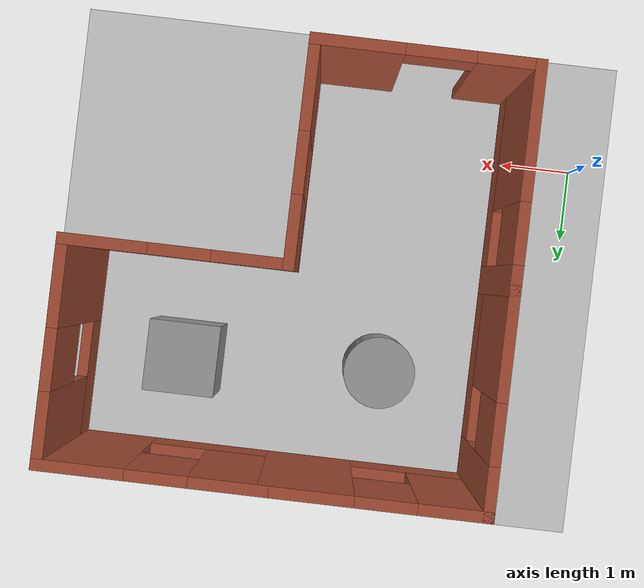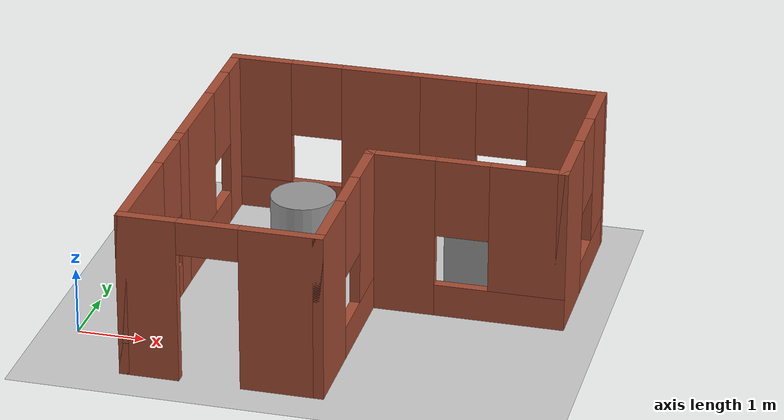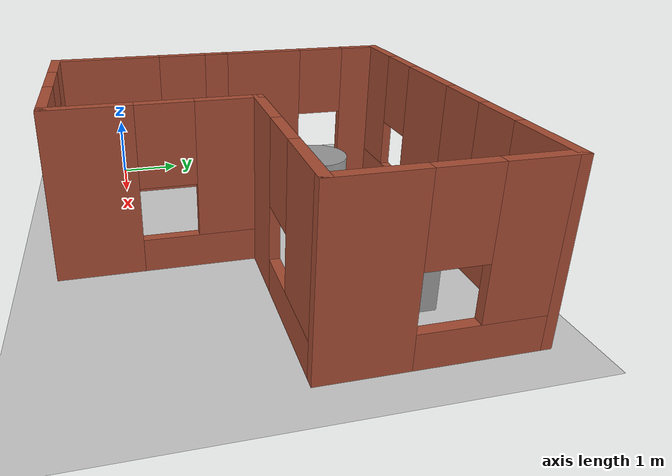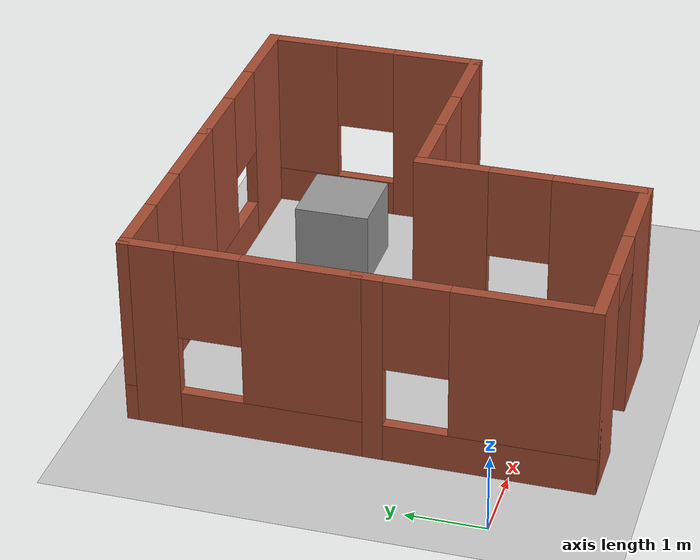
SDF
<sdf version="1.6">
 <world name="default">
  <light name="sun" type="directional">
   <pose>0 0 10 0 -0 0</pose>
   <diffuse>0.8 0.8 0.8 1</diffuse>
   <specular>0.2 0.2 0.2 1</specular>
   <attenuation>
    <range>1000</range>
    <constant>0.9</constant>
    <linear>0.01</linear>
    <quadratic>0.001</quadratic>
   </attenuation>
   <direction>-0.5 0.1 -0.9</direction>
  </light>
  <model name="ground_plane">
   <static>1</static>
   <link name="link">
    <collision name="collision">
     <geometry><plane><normal>0 0 1</normal><size>100 100</size></plane></geometry>
     <surface>
      <contact><collide_bitmask>65535</collide_bitmask></contact>
      <friction><ode><mu>100</mu><mu2>50</mu2></ode></friction>
     </surface>
    </collision>
    <visual name="visual">
     <cast_shadows>0</cast_shadows>
     <geometry><plane><normal>0 0 1</normal><size>100 100</size></plane></geometry>
     <material>
      <script><uri>file://media/materials/scripts/gazebo.material</uri><name>Gazebo/Grey</name></script>
     </material>
    </visual>
   </link>
  </model>
  <gravity>0 0 -9.8</gravity>
  <magnetic_field>6e-06 2.3e-05 -4.2e-05</magnetic_field>
  <atmosphere type="adiabatic"/>
  <physics name="default_physics" default="0" type="ode">
   <max_step_size>0.001</max_step_size>
   <real_time_factor>1</real_time_factor>
   <real_time_update_rate>1000</real_time_update_rate>
  </physics>
  <scene><ambient>0.4 0.4 0.4 1</ambient><background>0.7 0.7 0.7 1</background><shadows>1</shadows></scene>
  <audio><device>default</device></audio>
  <spherical_coordinates>
   <surface_model>EARTH_WGS84</surface_model>
   <latitude_deg>0</latitude_deg>
   <longitude_deg>0</longitude_deg>
   <elevation>0</elevation>
   <heading_deg>0</heading_deg>
  </spherical_coordinates>
  <model name="home.sdf">
   <pose>3.89655 1.86505 0 0 -0 0</pose>
   <link name="Wall_0">
    <pose>-2.85 1.425 0 0 -0 -1.5708</pose>
    <visual name="Wall_0_Visual_0">
     <pose>-1.14136 0 1.25 0 -0 0</pose>
     <geometry><box><size>0.71728 0.15 2.5</size></box></geometry>
     <material>
      <script><uri>file://media/materials/scripts/gazebo.material</uri><name>Gazebo/Bricks</name></script>
      <ambient>1 1 1 1</ambient>
     </material>
     <meta><layer>0</layer></meta>
    </visual>
    <collision name="Wall_0_Collision_0">
     <geometry><box><size>0.71728 0.15 2.5</size></box></geometry>
     <pose>-1.14136 0 1.25 0 -0 0</pose>
    </collision>
    <visual name="Wall_0_Visual_1">
     <pose>0.35864 0 0.25 0 -0 0</pose>
     <geometry><box><size>2.28272 0.15 0.5</size></box></geometry>
     <material>
      <script><uri>file://media/materials/scripts/gazebo.material</uri><name>Gazebo/Bricks</name></script>
      <ambient>1 1 1 1</ambient>
     </material>
     <meta><layer>0</layer></meta>
    </visual>
    <collision name="Wall_0_Collision_1">
     <geometry><box><size>2.28272 0.15 0.5</size></box></geometry>
     <pose>0.35864 0 0.25 0 -0 0</pose>
    </collision>
    <visual name="Wall_0_Visual_2">
     <pose>0.75864 0 1.5 0 -0 0</pose>
     <geometry><box><size>1.48272 0.15 2</size></box></geometry>
     <material>
      <script><uri>file://media/materials/scripts/gazebo.material</uri><name>Gazebo/Bricks</name></script>
      <ambient>1 1 1 1</ambient>
     </material>
     <meta><layer>0</layer></meta>
    </visual>
    <collision name="Wall_0_Collision_2">
     <geometry><box><size>1.48272 0.15 2</size></box></geometry>
     <pose>0.75864 0 1.5 0 -0 0</pose>
    </collision>
    <visual name="Wall_0_Visual_3">
     <pose>-0.38272 0 1.9 0 -0 0</pose>
     <geometry><box><size>0.8 0.15 1.2</size></box></geometry>
     <material>
      <script><uri>file://media/materials/scripts/gazebo.material</uri><name>Gazebo/Bricks</name></script>
      <ambient>1 1 1 1</ambient>
     </material>
     <meta><layer>0</layer></meta>
    </visual>
    <collision name="Wall_0_Collision_3">
     <geometry><box><size>0.8 0.15 1.2</size></box></geometry>
     <pose>-0.38272 0 1.9 0 -0 0</pose>
    </collision>
   </link>
   <link name="Wall_10">
    <pose>1.425 2.85 0 0 -0 3.14159</pose>
    <visual name="Wall_10_Visual_0">
     <pose>-0.910917 0 1.25 0 -0 0</pose>
     <geometry><box><size>1.17816 0.15 2.5</size></box></geometry>
     <material>
      <script><uri>file://media/materials/scripts/gazebo.material</uri><name>Gazebo/Bricks</name></script>
      <ambient>1 1 1 1</ambient>
     </material>
     <meta><layer>0</layer></meta>
    </visual>
    <collision name="Wall_10_Collision_0">
     <geometry><box><size>1.17816 0.15 2.5</size></box></geometry>
     <pose>-0.910917 0 1.25 0 -0 0</pose>
    </collision>
    <visual name="Wall_10_Visual_1">
     <pose>0.589083 0 0.25 0 -0 0</pose>
     <geometry><box><size>1.82184 0.15 0.5</size></box></geometry>
     <material>
      <script><uri>file://media/materials/scripts/gazebo.material</uri><name>Gazebo/Bricks</name></script>
      <ambient>1 1 1 1</ambient>
     </material>
     <meta><layer>0</layer></meta>
    </visual>
    <collision name="Wall_10_Collision_1">
     <geometry><box><size>1.82184 0.15 0.5</size></box></geometry>
     <pose>0.589083 0 0.25 0 -0 0</pose>
    </collision>
    <visual name="Wall_10_Visual_2">
     <pose>0.989083 0 1.5 0 -0 0</pose>
     <geometry><box><size>1.02184 0.15 2</size></box></geometry>
     <material>
      <script><uri>file://media/materials/scripts/gazebo.material</uri><name>Gazebo/Bricks</name></script>
      <ambient>1 1 1 1</ambient>
     </material>
     <meta><layer>0</layer></meta>
    </visual>
    <collision name="Wall_10_Collision_2">
     <geometry><box><size>1.02184 0.15 2</size></box></geometry>
     <pose>0.989083 0 1.5 0 -0 0</pose>
    </collision>
    <visual name="Wall_10_Visual_3">
     <pose>0.078165 0 1.9 0 -0 0</pose>
     <geometry><box><size>0.8 0.15 1.2</size></box></geometry>
     <material>
      <script><uri>file://media/materials/scripts/gazebo.material</uri><name>Gazebo/Bricks</name></script>
      <ambient>1 1 1 1</ambient>
     </material>
     <meta><layer>0</layer></meta>
    </visual>
    <collision name="Wall_10_Collision_3">
     <geometry><box><size>0.8 0.15 1.2</size></box></geometry>
     <pose>0.078165 0 1.9 0 -0 0</pose>
    </collision>
   </link>
   <link name="Wall_3">
    <pose>-1.425 2.85 0 0 -0 3.14159</pose>
    <visual name="Wall_3_Visual_0">
     <pose>-0.884242 0 1.25 0 -0 0</pose>
     <geometry><box><size>1.23152 0.15 2.5</size></box></geometry>
     <material>
      <script><uri>file://media/materials/scripts/gazebo.material</uri><name>Gazebo/Bricks</name></script>
      <ambient>1 1 1 1</ambient>
     </material>
     <meta><layer>0</layer></meta>
    </visual>
    <collision name="Wall_3_Collision_0">
     <geometry><box><size>1.23152 0.15 2.5</size></box></geometry>
     <pose>-0.884242 0 1.25 0 -0 0</pose>
    </collision>
    <visual name="Wall_3_Visual_1">
     <pose>0.615758 0 0.25 0 -0 0</pose>
     <geometry><box><size>1.76848 0.15 0.5</size></box></geometry>
     <material>
      <script><uri>file://media/materials/scripts/gazebo.material</uri><name>Gazebo/Bricks</name></script>
      <ambient>1 1 1 1</ambient>
     </material>
     <meta><layer>0</layer></meta>
    </visual>
    <collision name="Wall_3_Collision_1">
     <geometry><box><size>1.76848 0.15 0.5</size></box></geometry>
     <pose>0.615758 0 0.25 0 -0 0</pose>
    </collision>
    <visual name="Wall_3_Visual_2">
     <pose>1.01576 0 1.5 0 -0 0</pose>
     <geometry><box><size>0.968484 0.15 2</size></box></geometry>
     <material>
      <script><uri>file://media/materials/scripts/gazebo.material</uri><name>Gazebo/Bricks</name></script>
      <ambient>1 1 1 1</ambient>
     </material>
     <meta><layer>0</layer></meta>
    </visual>
    <collision name="Wall_3_Collision_2">
     <geometry><box><size>0.968484 0.15 2</size></box></geometry>
     <pose>1.01576 0 1.5 0 -0 0</pose>
    </collision>
    <visual name="Wall_3_Visual_3">
     <pose>0.131516 0 1.9 0 -0 0</pose>
     <geometry><box><size>0.8 0.15 1.2</size></box></geometry>
     <material>
      <script><uri>file://media/materials/scripts/gazebo.material</uri><name>Gazebo/Bricks</name></script>
      <ambient>1 1 1 1</ambient>
     </material>
     <meta><layer>0</layer></meta>
    </visual>
    <collision name="Wall_3_Collision_3">
     <geometry><box><size>0.8 0.15 1.2</size></box></geometry>
     <pose>0.131516 0 1.9 0 -0 0</pose>
    </collision>
   </link>
   <link name="Wall_5">
    <pose>-2.85 -1.425 0 0 -0 -1.5708</pose>
    <visual name="Wall_5_Visual_0">
     <pose>-1.29833 0 1.25 0 -0 0</pose>
     <geometry><box><size>0.403339 0.15 2.5</size></box></geometry>
     <material>
      <script><uri>file://media/materials/scripts/gazebo.material</uri><name>Gazebo/Bricks</name></script>
      <ambient>1 1 1 1</ambient>
     </material>
     <meta><layer>0</layer></meta>
    </visual>
    <collision name="Wall_5_Collision_0">
     <geometry><box><size>0.403339 0.15 2.5</size></box></geometry>
     <pose>-1.29833 0 1.25 0 -0 0</pose>
    </collision>
    <visual name="Wall_5_Visual_1">
     <pose>0.20167 0 0.25 0 -0 0</pose>
     <geometry><box><size>2.59666 0.15 0.5</size></box></geometry>
     <material>
      <script><uri>file://media/materials/scripts/gazebo.material</uri><name>Gazebo/Bricks</name></script>
      <ambient>1 1 1 1</ambient>
     </material>
     <meta><layer>0</layer></meta>
    </visual>
    <collision name="Wall_5_Collision_1">
     <geometry><box><size>2.59666 0.15 0.5</size></box></geometry>
     <pose>0.20167 0 0.25 0 -0 0</pose>
    </collision>
    <visual name="Wall_5_Visual_2">
     <pose>0.60167 0 1.5 0 -0 0</pose>
     <geometry><box><size>1.79666 0.15 2</size></box></geometry>
     <material>
      <script><uri>file://media/materials/scripts/gazebo.material</uri><name>Gazebo/Bricks</name></script>
      <ambient>1 1 1 1</ambient>
     </material>
     <meta><layer>0</layer></meta>
    </visual>
    <collision name="Wall_5_Collision_2">
     <geometry><box><size>1.79666 0.15 2</size></box></geometry>
     <pose>0.60167 0 1.5 0 -0 0</pose>
    </collision>
    <visual name="Wall_5_Visual_3">
     <pose>-0.696661 0 1.9 0 -0 0</pose>
     <geometry><box><size>0.8 0.15 1.2</size></box></geometry>
     <material>
      <script><uri>file://media/materials/scripts/gazebo.material</uri><name>Gazebo/Bricks</name></script>
      <ambient>1 1 1 1</ambient>
     </material>
     <meta><layer>0</layer></meta>
    </visual>
    <collision name="Wall_5_Collision_3">
     <geometry><box><size>0.8 0.15 1.2</size></box></geometry>
     <pose>-0.696661 0 1.9 0 -0 0</pose>
    </collision>
   </link>
   <link name="Wall_6">
    <pose>-1.425 -2.85 0 0 -0 0</pose>
    <visual name="Wall_6_Visual_0">
     <pose>-1.05825 0 1.25 0 -0 0</pose>
     <geometry><box><size>0.883505 0.15 2.5</size></box></geometry>
     <material>
      <script><uri>file://media/materials/scripts/gazebo.material</uri><name>Gazebo/Bricks</name></script>
      <ambient>1 1 1 1</ambient>
     </material>
     <meta><layer>0</layer></meta>
    </visual>
    <collision name="Wall_6_Collision_0">
     <geometry><box><size>0.883505 0.15 2.5</size></box></geometry>
     <pose>-1.05825 0 1.25 0 -0 0</pose>
    </collision>
    <visual name="Wall_6_Visual_1">
     <pose>0.891752 0 1.25 0 -0 0</pose>
     <geometry><box><size>1.2165 0.15 2.5</size></box></geometry>
     <material>
      <script><uri>file://media/materials/scripts/gazebo.material</uri><name>Gazebo/Bricks</name></script>
      <ambient>1 1 1 1</ambient>
     </material>
     <meta><layer>0</layer></meta>
    </visual>
    <collision name="Wall_6_Collision_1">
     <geometry><box><size>1.2165 0.15 2.5</size></box></geometry>
     <pose>0.891752 0 1.25 0 -0 0</pose>
    </collision>
    <visual name="Wall_6_Visual_2">
     <pose>-0.166495 0 2.25 0 -0 0</pose>
     <geometry><box><size>0.9 0.15 0.5</size></box></geometry>
     <material>
      <script><uri>file://media/materials/scripts/gazebo.material</uri><name>Gazebo/Bricks</name></script>
      <ambient>1 1 1 1</ambient>
     </material>
     <meta><layer>0</layer></meta>
    </visual>
    <collision name="Wall_6_Collision_2">
     <geometry><box><size>0.9 0.15 0.5</size></box></geometry>
     <pose>-0.166495 0 2.25 0 -0 0</pose>
    </collision>
   </link>
   <link name="Wall_7">
    <pose>-0 -1.425 0 0 -0 1.5708</pose>
    <visual name="Wall_7_Visual_0">
     <pose>-0.881511 0 1.25 0 -0 0</pose>
     <geometry><box><size>1.23698 0.15 2.5</size></box></geometry>
     <material>
      <script><uri>file://media/materials/scripts/gazebo.material</uri><name>Gazebo/Bricks</name></script>
      <ambient>1 1 1 1</ambient>
     </material>
     <meta><layer>0</layer></meta>
    </visual>
    <collision name="Wall_7_Collision_0">
     <geometry><box><size>1.23698 0.15 2.5</size></box></geometry>
     <pose>-0.881511 0 1.25 0 -0 0</pose>
    </collision>
    <visual name="Wall_7_Visual_1">
     <pose>0.618489 0 0.25 0 -0 0</pose>
     <geometry><box><size>1.76302 0.15 0.5</size></box></geometry>
     <material>
      <script><uri>file://media/materials/scripts/gazebo.material</uri><name>Gazebo/Bricks</name></script>
      <ambient>1 1 1 1</ambient>
     </material>
     <meta><layer>0</layer></meta>
    </visual>
    <collision name="Wall_7_Collision_1">
     <geometry><box><size>1.76302 0.15 0.5</size></box></geometry>
     <pose>0.618489 0 0.25 0 -0 0</pose>
    </collision>
    <visual name="Wall_7_Visual_2">
     <pose>1.01849 0 1.5 0 -0 0</pose>
     <geometry><box><size>0.963021 0.15 2</size></box></geometry>
     <material>
      <script><uri>file://media/materials/scripts/gazebo.material</uri><name>Gazebo/Bricks</name></script>
      <ambient>1 1 1 1</ambient>
     </material>
     <meta><layer>0</layer></meta>
    </visual>
    <collision name="Wall_7_Collision_2">
     <geometry><box><size>0.963021 0.15 2</size></box></geometry>
     <pose>1.01849 0 1.5 0 -0 0</pose>
    </collision>
    <visual name="Wall_7_Visual_3">
     <pose>0.136979 0 1.9 0 -0 0</pose>
     <geometry><box><size>0.8 0.15 1.2</size></box></geometry>
     <material>
      <script><uri>file://media/materials/scripts/gazebo.material</uri><name>Gazebo/Bricks</name></script>
      <ambient>1 1 1 1</ambient>
     </material>
     <meta><layer>0</layer></meta>
    </visual>
    <collision name="Wall_7_Collision_3">
     <geometry><box><size>0.8 0.15 1.2</size></box></geometry>
     <pose>0.136979 0 1.9 0 -0 0</pose>
    </collision>
   </link>
   <link name="Wall_8">
    <pose>1.425 -0 0 0 -0 0</pose>
    <visual name="Wall_8_Visual_0">
     <pose>-0.971592 0 1.25 0 -0 0</pose>
     <geometry><box><size>1.05682 0.15 2.5</size></box></geometry>
     <material>
      <script><uri>file://media/materials/scripts/gazebo.material</uri><name>Gazebo/Bricks</name></script>
      <ambient>1 1 1 1</ambient>
     </material>
     <meta><layer>0</layer></meta>
    </visual>
    <collision name="Wall_8_Collision_0">
     <geometry><box><size>1.05682 0.15 2.5</size></box></geometry>
     <pose>-0.971592 0 1.25 0 -0 0</pose>
    </collision>
    <visual name="Wall_8_Visual_1">
     <pose>0.528408 0 0.25 0 -0 0</pose>
     <geometry><box><size>1.94318 0.15 0.5</size></box></geometry>
     <material>
      <script><uri>file://media/materials/scripts/gazebo.material</uri><name>Gazebo/Bricks</name></script>
      <ambient>1 1 1 1</ambient>
     </material>
     <meta><layer>0</layer></meta>
    </visual>
    <collision name="Wall_8_Collision_1">
     <geometry><box><size>1.94318 0.15 0.5</size></box></geometry>
     <pose>0.528408 0 0.25 0 -0 0</pose>
    </collision>
    <visual name="Wall_8_Visual_2">
     <pose>0.928408 0 1.5 0 -0 0</pose>
     <geometry><box><size>1.14318 0.15 2</size></box></geometry>
     <material>
      <script><uri>file://media/materials/scripts/gazebo.material</uri><name>Gazebo/Bricks</name></script>
      <ambient>1 1 1 1</ambient>
     </material>
     <meta><layer>0</layer></meta>
    </visual>
    <collision name="Wall_8_Collision_2">
     <geometry><box><size>1.14318 0.15 2</size></box></geometry>
     <pose>0.928408 0 1.5 0 -0 0</pose>
    </collision>
    <visual name="Wall_8_Visual_3">
     <pose>-0.043185 0 1.9 0 -0 0</pose>
     <geometry><box><size>0.8 0.15 1.2</size></box></geometry>
     <material>
      <script><uri>file://media/materials/scripts/gazebo.material</uri><name>Gazebo/Bricks</name></script>
      <ambient>1 1 1 1</ambient>
     </material>
     <meta><layer>0</layer></meta>
    </visual>
    <collision name="Wall_8_Collision_3">
     <geometry><box><size>0.8 0.15 1.2</size></box></geometry>
     <pose>-0.043185 0 1.9 0 -0 0</pose>
    </collision>
   </link>
   <link name="Wall_9">
    <pose>2.85 1.425 0 0 -0 1.5708</pose>
    <visual name="Wall_9_Visual_0">
     <pose>-0.898561 0 1.25 0 -0 0</pose>
     <geometry><box><size>1.20288 0.15 2.5</size></box></geometry>
     <material>
      <script><uri>file://media/materials/scripts/gazebo.material</uri><name>Gazebo/Bricks</name></script>
      <ambient>1 1 1 1</ambient>
     </material>
     <meta><layer>0</layer></meta>
    </visual>
    <collision name="Wall_9_Collision_0">
     <geometry><box><size>1.20288 0.15 2.5</size></box></geometry>
     <pose>-0.898561 0 1.25 0 -0 0</pose>
    </collision>
    <visual name="Wall_9_Visual_1">
     <pose>0.601439 0 0.25 0 -0 0</pose>
     <geometry><box><size>1.79712 0.15 0.5</size></box></geometry>
     <material>
      <script><uri>file://media/materials/scripts/gazebo.material</uri><name>Gazebo/Bricks</name></script>
      <ambient>1 1 1 1</ambient>
     </material>
     <meta><layer>0</layer></meta>
    </visual>
    <collision name="Wall_9_Collision_1">
     <geometry><box><size>1.79712 0.15 0.5</size></box></geometry>
     <pose>0.601439 0 0.25 0 -0 0</pose>
    </collision>
    <visual name="Wall_9_Visual_2">
     <pose>1.00144 0 1.5 0 -0 0</pose>
     <geometry><box><size>0.997121 0.15 2</size></box></geometry>
     <material>
      <script><uri>file://media/materials/scripts/gazebo.material</uri><name>Gazebo/Bricks</name></script>
      <ambient>1 1 1 1</ambient>
     </material>
     <meta><layer>0</layer></meta>
    </visual>
    <collision name="Wall_9_Collision_2">
     <geometry><box><size>0.997121 0.15 2</size></box></geometry>
     <pose>1.00144 0 1.5 0 -0 0</pose>
    </collision>
    <visual name="Wall_9_Visual_3">
     <pose>0.102879 0 1.9 0 -0 0</pose>
     <geometry><box><size>0.8 0.15 1.2</size></box></geometry>
     <material>
      <script><uri>file://media/materials/scripts/gazebo.material</uri><name>Gazebo/Bricks</name></script>
      <ambient>1 1 1 1</ambient>
     </material>
     <meta><layer>0</layer></meta>
    </visual>
    <collision name="Wall_9_Collision_3">
     <geometry><box><size>0.8 0.15 1.2</size></box></geometry>
     <pose>0.102879 0 1.9 0 -0 0</pose>
    </collision>
   </link>
   <static>1</static>
  </model>
  <model name="unit_cylinder">
   <pose>2.51803 3.20565 0.5 0 -0 0</pose>
   <link name="link">
    <inertial>
     <mass>1</mass>
     <inertia><ixx>0.145833</ixx><ixy>0</ixy><ixz>0</ixz><iyy>0.145833</iyy><iyz>0</iyz><izz>0.125</izz></inertia>
    </inertial>
    <collision name="collision">
     <geometry><cylinder><radius>0.5</radius><length>1</length></cylinder></geometry>
    </collision>
    <visual name="visual">
     <geometry><cylinder><radius>0.5</radius><length>1</length></cylinder></geometry>
     <material>
      <script><name>Gazebo/Grey</name><uri>file://media/materials/scripts/gazebo.material</uri></script>
     </material>
    </visual>
   </link>
  </model>
  <model name="unit_box">
   <pose>5.28787 3.32187 0.5 0 -0 0</pose>
   <link name="link">
    <inertial>
     <mass>1</mass>
     <inertia>
      <ixx>0.166667</ixx>
      <ixy>0</ixy>
      <ixz>0</ixz>
      <iyy>0.166667</iyy>
      <iyz>0</iyz>
      <izz>0.166667</izz>
     </inertia>
    </inertial>
    <collision name="collision"><geometry><box><size>1 1 1</size></box></geometry></collision>
    <visual name="visual">
     <geometry><box><size>1 1 1</size></box></geometry>
     <material>
      <script><name>Gazebo/Grey</name><uri>file://media/materials/scripts/gazebo.material</uri></script>
     </material>
    </visual>
   </link>
  </model>
 </world>
</sdf>
